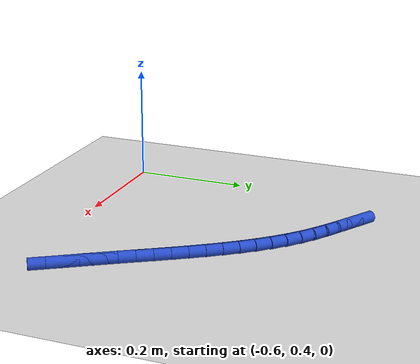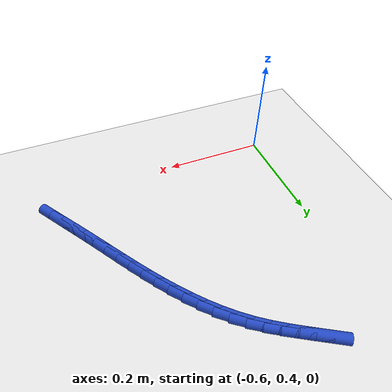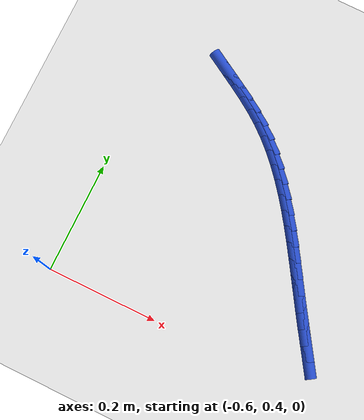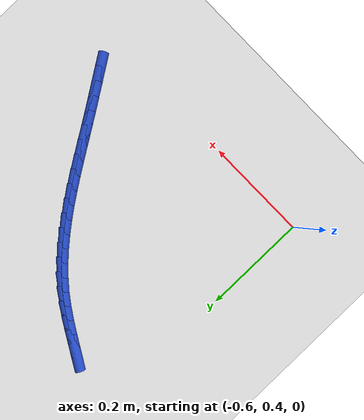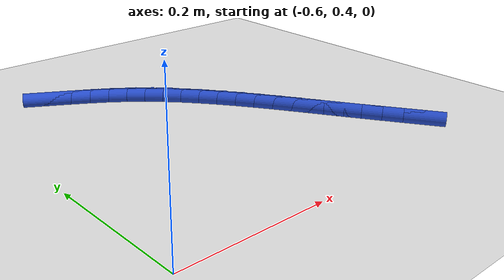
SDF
<sdf version="1.6">
 <world name="default">
  <model name="ground_plane">
   <static>1</static>
   <link name="link">
    <collision name="collision">
     <geometry><plane><normal>0 0 1</normal><size>100 100</size></plane></geometry>
     <surface><friction><ode><mu>100</mu><mu2>50</mu2></ode></friction></surface>
    </collision>
    <visual name="visual">
     <cast_shadows>0</cast_shadows>
     <geometry><plane><normal>0 0 1</normal><size>100 100</size></plane></geometry>
     <material>
      <script><uri>file://media/materials/scripts/gazebo.material</uri><name>Gazebo/WhiteGlow</name></script>
     </material>
    </visual>
   </link>
  </model>
  <model name="line">
   <link name="link_18">
    <pose>-0.1416851012714595 0.4620717797770349 0.01 0 1.57 -0.9897615026237359</pose>
    <collision name="collision">
     <geometry><cylinder><radius>0.01</radius><length>0.08</length></cylinder></geometry>
    </collision>
    <visual name="visual">
     <material>
      <script><name>Gazebo/Blue</name><uri>file://media/materials/scripts/gazebo.material</uri></script>
     </material>
     <geometry><cylinder><radius>0.01</radius><length>0.08</length></cylinder></geometry>
    </visual>
   </link>
   <link name="link_19">
    <pose>-0.1569795118043063 0.48536340568489855 0.01 0 1.57 -0.9883620079748079</pose>
    <collision name="collision">
     <geometry><cylinder><radius>0.01</radius><length>0.08</length></cylinder></geometry>
    </collision>
    <visual name="visual">
     <material>
      <script><name>Gazebo/Blue</name><uri>file://media/materials/scripts/gazebo.material</uri></script>
     </material>
     <geometry><cylinder><radius>0.01</radius><length>0.08</length></cylinder></geometry>
    </visual>
   </link>
   <link name="link_20">
    <pose>-0.17236120679249317 0.5087166570550834 0.01 0 1.57 -0.9920937467896654</pose>
    <collision name="collision">
     <geometry><cylinder><radius>0.01</radius><length>0.08</length></cylinder></geometry>
    </collision>
    <visual name="visual">
     <material>
      <script><name>Gazebo/Blue</name><uri>file://media/materials/scripts/gazebo.material</uri></script>
     </material>
     <geometry><cylinder><radius>0.01</radius><length>0.08</length></cylinder></geometry>
    </visual>
   </link>
   <link name="link_21">
    <pose>-0.18769911545676507 0.5321936818429167 0.01 0 1.57 -0.9991754209376995</pose>
    <collision name="collision">
     <geometry><cylinder><radius>0.01</radius><length>0.08</length></cylinder></geometry>
    </collision>
    <visual name="visual">
     <material>
      <script><name>Gazebo/Blue</name><uri>file://media/materials/scripts/gazebo.material</uri></script>
     </material>
     <geometry><cylinder><radius>0.01</radius><length>0.08</length></cylinder></geometry>
    </visual>
   </link>
   <link name="link_22">
    <pose>-0.20290074613906134 0.5558259352618468 0.01 0 1.57 -1.002321091380189</pose>
    <collision name="collision">
     <geometry><cylinder><radius>0.01</radius><length>0.08</length></cylinder></geometry>
    </collision>
    <visual name="visual">
     <material>
      <script><name>Gazebo/Blue</name><uri>file://media/materials/scripts/gazebo.material</uri></script>
     </material>
     <geometry><cylinder><radius>0.01</radius><length>0.08</length></cylinder></geometry>
    </visual>
   </link>
   <link name="link_23">
    <pose>-0.2180348154502989 0.5795166185984492 0.01 0 1.57 -0.9996446439555562</pose>
    <collision name="collision">
     <geometry><cylinder><radius>0.01</radius><length>0.08</length></cylinder></geometry>
    </collision>
    <visual name="visual">
     <material>
      <script><name>Gazebo/Blue</name><uri>file://media/materials/scripts/gazebo.material</uri></script>
     </material>
     <geometry><cylinder><radius>0.01</radius><length>0.08</length></cylinder></geometry>
    </visual>
   </link>
   <link name="link_24">
    <pose>-0.2332121412699618 0.6031354382506432 0.01 0 1.57 -0.9911088656459692</pose>
    <collision name="collision">
     <geometry><cylinder><radius>0.01</radius><length>0.08</length></cylinder></geometry>
    </collision>
    <visual name="visual">
     <material>
      <script><name>Gazebo/Blue</name><uri>file://media/materials/scripts/gazebo.material</uri></script>
     </material>
     <geometry><cylinder><radius>0.01</radius><length>0.08</length></cylinder></geometry>
    </visual>
   </link>
   <link name="link_25">
    <pose>-0.24854354160202283 0.6265521005173063 0.01 0 1.57 -0.976616741418029</pose>
    <collision name="collision">
     <geometry><cylinder><radius>0.01</radius><length>0.08</length></cylinder></geometry>
    </collision>
    <visual name="visual">
     <material>
      <script><name>Gazebo/Blue</name><uri>file://media/materials/scripts/gazebo.material</uri></script>
     </material>
     <geometry><cylinder><radius>0.01</radius><length>0.08</length></cylinder></geometry>
    </visual>
   </link>
   <link name="link_26">
    <pose>-0.26413983445045536 0.6496363116973167 0.01 0 1.57 -0.9560180378007423</pose>
    <collision name="collision">
     <geometry><cylinder><radius>0.01</radius><length>0.08</length></cylinder></geometry>
    </collision>
    <visual name="visual">
     <material>
      <script><name>Gazebo/Blue</name><uri>file://media/materials/scripts/gazebo.material</uri></script>
     </material>
     <geometry><cylinder><radius>0.01</radius><length>0.08</length></cylinder></geometry>
    </visual>
   </link>
   <link name="link_27">
    <pose>-0.2801118378192323 0.672257778089552 0.01 0 1.57 -0.9291219481177067</pose>
    <collision name="collision">
     <geometry><cylinder><radius>0.01</radius><length>0.08</length></cylinder></geometry>
    </collision>
    <visual name="visual">
     <material>
      <script><name>Gazebo/Blue</name><uri>file://media/materials/scripts/gazebo.material</uri></script>
     </material>
     <geometry><cylinder><radius>0.01</radius><length>0.08</length></cylinder></geometry>
    </visual>
   </link>
   <link name="link_28">
    <pose>-0.2965703697123269 0.6942862059928905 0.01 0 1.57 -0.8957177045043702</pose>
    <collision name="collision">
     <geometry><cylinder><radius>0.01</radius><length>0.08</length></cylinder></geometry>
    </collision>
    <visual name="visual">
     <material>
      <script><name>Gazebo/Blue</name><uri>file://media/materials/scripts/gazebo.material</uri></script>
     </material>
     <geometry><cylinder><radius>0.01</radius><length>0.08</length></cylinder></geometry>
    </visual>
   </link>
   <link name="link_29">
    <pose>-0.31362624813371204 0.7155913017062093 0.01 0 1.57 -0.8556055141582676</pose>
    <collision name="collision">
     <geometry><cylinder><radius>0.01</radius><length>0.08</length></cylinder></geometry>
    </collision>
    <visual name="visual">
     <material>
      <script><name>Gazebo/Blue</name><uri>file://media/materials/scripts/gazebo.material</uri></script>
     </material>
     <geometry><cylinder><radius>0.01</radius><length>0.08</length></cylinder></geometry>
    </visual>
   </link>
   <link name="link_30">
    <pose>-0.33139029108736107 0.7360427715283873 0.01 0 1.57 -0.8086400053167925</pose>
    <collision name="collision">
     <geometry><cylinder><radius>0.01</radius><length>0.08</length></cylinder></geometry>
    </collision>
    <visual name="visual">
     <material>
      <script><name>Gazebo/Blue</name><uri>file://media/materials/scripts/gazebo.material</uri></script>
     </material>
     <geometry><cylinder><radius>0.01</radius><length>0.08</length></cylinder></geometry>
    </visual>
   </link>
   <link name="link_31">
    <pose>-0.3499733165772468 0.7555103217583014 0.01 0 1.57 -0.754787010417124</pose>
    <collision name="collision">
     <geometry><cylinder><radius>0.01</radius><length>0.08</length></cylinder></geometry>
    </collision>
    <visual name="visual">
     <material>
      <script><name>Gazebo/Blue</name><uri>file://media/materials/scripts/gazebo.material</uri></script>
     </material>
     <geometry><cylinder><radius>0.01</radius><length>0.08</length></cylinder></geometry>
    </visual>
   </link>
   <link name="link_32">
    <pose>-0.3694861426073427 0.77386365869483 0.01 0 1.57 -0.6941913041914025</pose>
    <collision name="collision">
     <geometry><cylinder><radius>0.01</radius><length>0.08</length></cylinder></geometry>
    </collision>
    <visual name="visual">
     <material>
      <script><name>Gazebo/Blue</name><uri>file://media/materials/scripts/gazebo.material</uri></script>
     </material>
     <geometry><cylinder><radius>0.01</radius><length>0.08</length></cylinder></geometry>
    </visual>
   </link>
   <link name="link_33">
    <pose>-0.3900395871816214 0.7909724886368507 0.01 0 1.57 -0.6302014020379919</pose>
    <collision name="collision">
     <geometry><cylinder><radius>0.01</radius><length>0.08</length></cylinder></geometry>
    </collision>
    <visual name="visual">
     <material>
      <script><name>Gazebo/Blue</name><uri>file://media/materials/scripts/gazebo.material</uri></script>
     </material>
     <geometry><cylinder><radius>0.01</radius><length>0.08</length></cylinder></geometry>
    </visual>
   </link>
   <link name="link_34">
    <pose>-0.41169835861751175 0.8067708999495686 0.01 0 1.57 -0.5784494462795001</pose>
    <collision name="collision">
     <geometry><cylinder><radius>0.01</radius><length>0.08</length></cylinder></geometry>
    </collision>
    <visual name="visual">
     <material>
      <script><name>Gazebo/Blue</name><uri>file://media/materials/scripts/gazebo.material</uri></script>
     </material>
     <geometry><cylinder><radius>0.01</radius><length>0.08</length></cylinder></geometry>
    </visual>
   </link>
   <link name="link_35">
    <pose>-0.4342909343584891 0.8215228256129579 0.01 0 1.57 -0.5437946530491432</pose>
    <collision name="collision">
     <geometry><cylinder><radius>0.01</radius><length>0.08</length></cylinder></geometry>
    </collision>
    <visual name="visual">
     <material>
      <script><name>Gazebo/Blue</name><uri>file://media/materials/scripts/gazebo.material</uri></script>
     </material>
     <geometry><cylinder><radius>0.01</radius><length>0.08</length></cylinder></geometry>
    </visual>
   </link>
   <link name="link_36">
    <pose>-0.4575703435077503 0.8355975456698783 0.01 0 1.57 -0.5258891914275329</pose>
    <collision name="collision">
     <geometry><cylinder><radius>0.01</radius><length>0.08</length></cylinder></geometry>
    </collision>
    <visual name="visual">
     <material>
      <script><name>Gazebo/Blue</name><uri>file://media/materials/scripts/gazebo.material</uri></script>
     </material>
     <geometry><cylinder><radius>0.01</radius><length>0.08</length></cylinder></geometry>
    </visual>
   </link>
   <link name="link_37">
    <pose>-0.48128958207280836 0.8493643863740566 0.01 0 1.57 -0.5243089317881079</pose>
    <collision name="collision">
     <geometry><cylinder><radius>0.01</radius><length>0.08</length></cylinder></geometry>
    </collision>
    <visual name="visual">
     <material>
      <script><name>Gazebo/Blue</name><uri>file://media/materials/scripts/gazebo.material</uri></script>
     </material>
     <geometry><cylinder><radius>0.01</radius><length>0.08</length></cylinder></geometry>
    </visual>
   </link>
  </model>
 </world>
</sdf>
